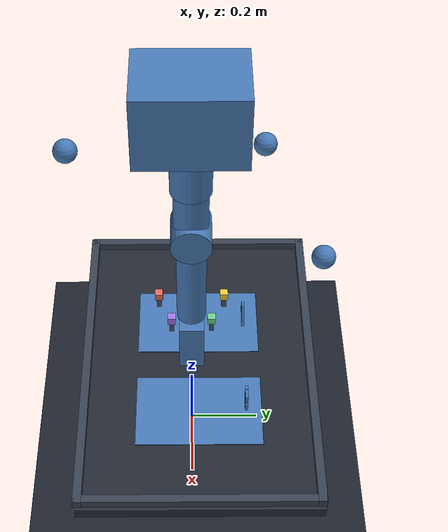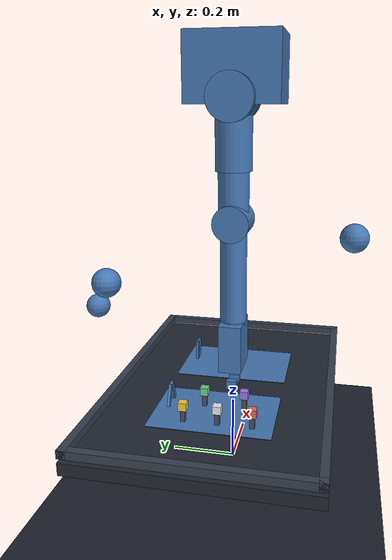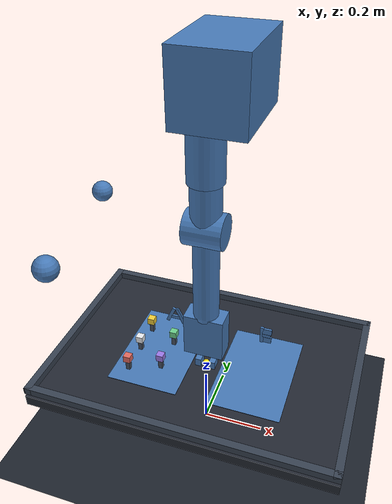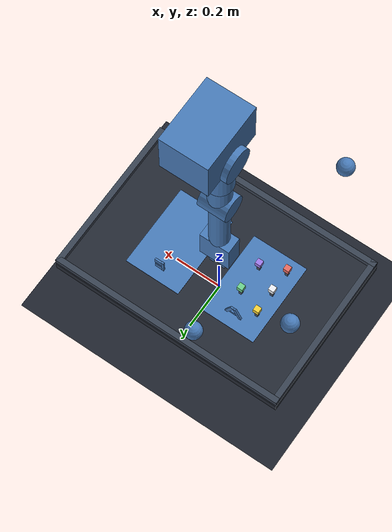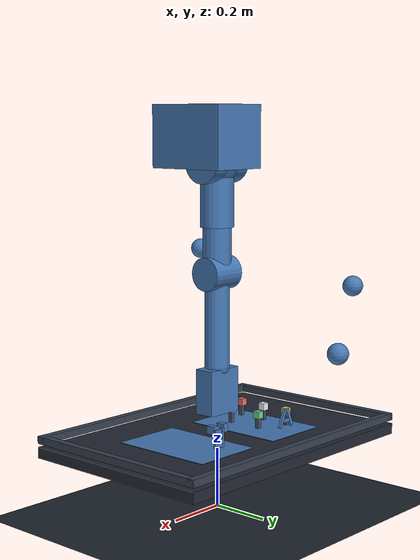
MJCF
<mujoco model="shoulder_prosthesis_control_prototype">
  <compiler angle="degree" autolimits="true"/>
  <option timestep="0.002" gravity="0 0 0" integrator="implicitfast"/>

  <visual>
    <headlight ambient="0.35 0.35 0.35" diffuse="0.75 0.75 0.75" specular="0.2 0.2 0.2"/>
    <rgba haze="0.15 0.18 0.22 1"/>
    <global azimuth="135" elevation="-20"/>
  </visual>

  <default>
    <joint damping="2" armature="0.02"/>
    <geom contype="0" conaffinity="0" density="800" friction="0.8 0.02 0.001"
          rgba="0.28 0.48 0.72 1"/>
    <position kp="120" kv="18"/>
    <default class="pap_contact">
      <geom contype="1" conaffinity="1" condim="3" friction="1.2 0.01 0.001"
            solref="0.008 1" solimp="0.95 0.99 0.001 0.5 2"/>
    </default>
    <default class="cube">
      <geom contype="1" conaffinity="1" condim="4" friction="2.2 0.06 0.002"
            solref="0.008 1" solimp="0.95 0.99 0.001 0.5 2" density="420" priority="1"/>
      <joint damping="0.04" armature="0.00002"/>
    </default>
  </default>

  <asset>
    <material name="base_mat" rgba="0.18 0.22 0.28 1"/>
    <material name="upper_mat" rgba="0.22 0.52 0.78 1"/>
    <material name="forearm_mat" rgba="0.18 0.68 0.58 1"/>
    <material name="hand_mat" rgba="0.90 0.58 0.20 1"/>
    <material name="target_mat" rgba="0.95 0.18 0.18 0.70"/>
    <material name="zone_a_mat" rgba="0.16 0.46 0.95 1"/>
    <material name="zone_b_mat" rgba="0.95 0.50 0.14 1"/>
    <material name="letter_mat" rgba="0.04 0.07 0.12 1"/>
  </asset>

  <worldbody>
    <light pos="1 -1 2.8" dir="-0.4 0.3 -1"/>
    <geom name="floor" type="plane" size="2 2 0.05" pos="0 0 0" rgba="0.12 0.14 0.18 1"/>

    <!-- Fixed shoulder base. The arm's neutral pose points downward. -->
    <body name="fixed_base" pos="0 0 1.15">
      <geom name="base_plate" type="box" size="0.10 0.14 0.10" pos="0.05 0 0.08" material="base_mat"/>
      <geom name="base_post" type="cylinder" size="0.055 0.13" pos="0 0 -0.08" material="base_mat"/>

      <!-- Positive shoulder flexion moves the arm toward model -X (defined as forward). -->
      <body name="shoulder_flexion_frame">
        <joint name="shoulder_flexion" type="hinge" axis="0 1 0" range="-30 100"/>
        <geom name="shoulder_pitch_hub" type="cylinder" size="0.07 0.075" quat="0.707107 0 0.707107 0"
              material="upper_mat"/>

        <!-- Positive shoulder abduction moves the arm toward model +Y. -->
        <body name="shoulder_abduction_frame">
          <joint name="shoulder_abduction" type="hinge" axis="1 0 0" range="-10 90"/>
          <geom name="shoulder_roll_hub" type="sphere" size="0.075" material="upper_mat"/>
          <geom name="upper_arm" type="capsule" fromto="0 0 -0.04 0 0 -0.34" size="0.047"
                material="upper_mat"/>

          <!-- Temporary interpretation: forearm forward/back = elbow/forearm pitch. -->
          <body name="forearm_frame" pos="0 0 -0.36">
            <joint name="forearm_pitch" type="hinge" axis="0 1 0" range="-20 110"/>
            <geom name="elbow_hub" type="cylinder" size="0.055 0.06" quat="0.707107 0 0.707107 0"
                  material="forearm_mat"/>
            <geom name="forearm" type="capsule" fromto="0 0 -0.04 0 0 -0.31" size="0.041"
                  material="forearm_mat"/>

            <body name="hand" pos="0 0 -0.34">
              <geom name="palm" type="box" size="0.065 0.035 0.075" pos="0 0 -0.05" material="hand_mat"/>

              <!-- One logical aperture DOF. The right finger is constrained to mirror the left.
                   Pads stay clear of cube contacts; the web app attaches a nearby cube when the hand closes. -->
              <body name="left_finger" pos="0.024 0 -0.118">
                <joint name="hand_aperture_left" type="slide" axis="1 0 0" range="0 0.035" damping="3" armature="0.001"/>
                <geom name="left_finger_geom" type="box" size="0.010 0.016 0.014" pos="0 0 -0.064"
                      material="hand_mat"/>
              </body>
              <body name="right_finger" pos="-0.024 0 -0.118">
                <joint name="hand_aperture_right" type="slide" axis="-1 0 0" range="0 0.035" damping="3" armature="0.001"/>
                <geom name="right_finger_geom" type="box" size="0.010 0.016 0.014" pos="0 0 -0.064"
                      material="hand_mat"/>
              </body>

              <site name="end_effector" type="sphere" size="0.012" pos="0 0 -0.19" rgba="1 0.9 0.1 1"/>
            </body>
          </body>
        </body>
      </body>
    </body>

    <body name="pap_stage" pos="0 0 0">
      <freejoint name="pap_stage_free"/>
      <inertial pos="0 0 0" mass="200" diaginertia="8 8 8"/>
      <geom name="pap_platform" class="pap_contact" type="box" size="0.50 0.34 0.018" pos="0 0.02 0.232"
            rgba="0.14 0.16 0.20 1"/>
      <geom name="pap_zone_a" type="box" size="0.12 0.18 0.001" pos="-0.17 0.02 0.2506" material="zone_a_mat"/>
      <geom name="pap_zone_b" type="box" size="0.12 0.18 0.001" pos="0.17 0.02 0.2506" material="zone_b_mat"/>
      <!-- Narrow pedestals lift the cubes into the pinch without the fingertips hitting the mat. -->
      <geom name="pap_pedestal_1" class="pap_contact" type="box" size="0.007 0.007 0.018" pos="-0.24 0.10 0.268" rgba="0.28 0.32 0.38 1"/>
      <geom name="pap_pedestal_2" class="pap_contact" type="box" size="0.007 0.007 0.018" pos="-0.24 0.00 0.268" rgba="0.28 0.32 0.38 1"/>
      <geom name="pap_pedestal_3" class="pap_contact" type="box" size="0.007 0.007 0.018" pos="-0.24 -0.10 0.268" rgba="0.28 0.32 0.38 1"/>
      <geom name="pap_pedestal_4" class="pap_contact" type="box" size="0.007 0.007 0.018" pos="-0.14 0.06 0.268" rgba="0.28 0.32 0.38 1"/>
      <geom name="pap_pedestal_5" class="pap_contact" type="box" size="0.007 0.007 0.018" pos="-0.14 -0.06 0.268" rgba="0.28 0.32 0.38 1"/>
      <!-- Rims sit outside the hand's reachable pinch so they do not block a top-down grasp. -->
      <geom name="pap_rim_nx" class="pap_contact" type="box" size="0.012 0.34 0.012" pos="-0.488 0.02 0.274"
            rgba="0.22 0.26 0.32 1"/>
      <geom name="pap_rim_px" class="pap_contact" type="box" size="0.012 0.34 0.012" pos="0.488 0.02 0.274"
            rgba="0.22 0.26 0.32 1"/>
      <geom name="pap_rim_ny" class="pap_contact" type="box" size="0.50 0.012 0.012" pos="0 -0.308 0.274"
            rgba="0.22 0.26 0.32 1"/>
      <geom name="pap_rim_py" class="pap_contact" type="box" size="0.50 0.012 0.012" pos="0 0.348 0.274"
            rgba="0.22 0.26 0.32 1"/>
      <!-- Block letters sit on the near edge of each mat (toward +Y, the PAP camera). -->
      <geom name="pap_letter_a_l" type="box" size="0.006 0.004 0.032" pos="-0.188 0.155 0.298"
            euler="0 24 0" material="letter_mat"/>
      <geom name="pap_letter_a_r" type="box" size="0.006 0.004 0.032" pos="-0.152 0.155 0.298"
            euler="0 -24 0" material="letter_mat"/>
      <geom name="pap_letter_a_bar" type="box" size="0.016 0.004 0.006" pos="-0.170 0.155 0.290"
            material="letter_mat"/>
      <geom name="pap_letter_b_spine" type="box" size="0.006 0.004 0.032" pos="0.150 0.155 0.298"
            material="letter_mat"/>
      <geom name="pap_letter_b_top" type="box" size="0.016 0.004 0.011" pos="0.168 0.155 0.316"
            material="letter_mat"/>
      <geom name="pap_letter_b_mid" type="box" size="0.014 0.004 0.006" pos="0.166 0.155 0.298"
            material="letter_mat"/>
      <geom name="pap_letter_b_bot" type="box" size="0.016 0.004 0.011" pos="0.168 0.155 0.280"
            material="letter_mat"/>
    </body>

    <!-- 24 mm cubes fit inside the closed pinch (26 mm) and rest 1 mm above the pedestals. -->
    <body name="pap_cube_1" pos="-0.24 0.10 0.299" childclass="cube">
      <freejoint name="pap_cube_1_free"/>
      <geom name="pap_cube_1_geom" type="box" size="0.012 0.012 0.012" rgba="0.96 0.82 0.22 1"/>
    </body>
    <body name="pap_cube_2" pos="-0.24 0.00 0.299" childclass="cube">
      <freejoint name="pap_cube_2_free"/>
      <geom name="pap_cube_2_geom" type="box" size="0.012 0.012 0.012" rgba="0.93 0.94 0.96 1"/>
    </body>
    <body name="pap_cube_3" pos="-0.24 -0.10 0.299" childclass="cube">
      <freejoint name="pap_cube_3_free"/>
      <geom name="pap_cube_3_geom" type="box" size="0.012 0.012 0.012" rgba="0.90 0.42 0.38 1"/>
    </body>
    <body name="pap_cube_4" pos="-0.14 0.06 0.299" childclass="cube">
      <freejoint name="pap_cube_4_free"/>
      <geom name="pap_cube_4_geom" type="box" size="0.012 0.012 0.012" rgba="0.42 0.82 0.55 1"/>
    </body>
    <body name="pap_cube_5" pos="-0.14 -0.06 0.299" childclass="cube">
      <freejoint name="pap_cube_5_free"/>
      <geom name="pap_cube_5_geom" type="box" size="0.012 0.012 0.012" rgba="0.62 0.48 0.92 1"/>
    </body>

    <!-- Target geoms render in both native MuJoCo and Mjswan; sites retain exact telemetry anchors. -->
    <geom name="target_1_visual" type="sphere" size="0.035" pos="-0.45 0.22 0.72" material="target_mat"/>
    <geom name="target_2_visual" type="sphere" size="0.035" pos="-0.30 -0.35 0.82" material="target_mat"/>
    <geom name="target_3_visual" type="sphere" size="0.035" pos="-0.15 0.38 0.55" material="target_mat"/>
    <site name="target_1" type="sphere" size="0.001" pos="-0.45 0.22 0.72" rgba="0 0 0 0"/>
    <site name="target_2" type="sphere" size="0.001" pos="-0.30 -0.35 0.82" rgba="0 0 0 0"/>
    <site name="target_3" type="sphere" size="0.001" pos="-0.15 0.38 0.55" rgba="0 0 0 0"/>
  </worldbody>

  <equality>
    <joint name="symmetric_hand_aperture" joint1="hand_aperture_right" joint2="hand_aperture_left"
           polycoef="0 1 0 0 0" solref="0.005 1"/>
  </equality>

  <actuator>
    <position name="shoulder_flexion_servo" joint="shoulder_flexion" kp="140" kv="22"/>
    <position name="shoulder_abduction_servo" joint="shoulder_abduction" kp="140" kv="22"/>
    <position name="forearm_pitch_servo" joint="forearm_pitch" kp="110" kv="16"/>
    <position name="hand_aperture_servo" joint="hand_aperture_left" kp="420" kv="22" forcerange="-18 18"/>
  </actuator>

  <sensor>
    <jointpos name="shoulder_flexion_position" joint="shoulder_flexion"/>
    <jointpos name="shoulder_abduction_position" joint="shoulder_abduction"/>
    <jointpos name="forearm_pitch_position" joint="forearm_pitch"/>
    <jointpos name="hand_aperture_position" joint="hand_aperture_left"/>
    <framepos name="end_effector_position" objtype="site" objname="end_effector"/>
  </sensor>

  <keyframe>
    <!-- Keyframe/actuator control values use MuJoCo's internal radians, even with compiler angle="degree". -->
    <key name="home"
         qpos="0.1745329252 0.1745329252 0.7853981634 0.015 0.015 0 0 -8 1 0 0 0 -0.24 0.10 -8 1 0 0 0 -0.24 0.00 -8 1 0 0 0 -0.24 -0.10 -8 1 0 0 0 -0.14 0.06 -8 1 0 0 0 -0.14 -0.06 -8 1 0 0 0"
         ctrl="0.1745329252 0.1745329252 0.7853981634 0.015"/>
  </keyframe>
</mujoco>
